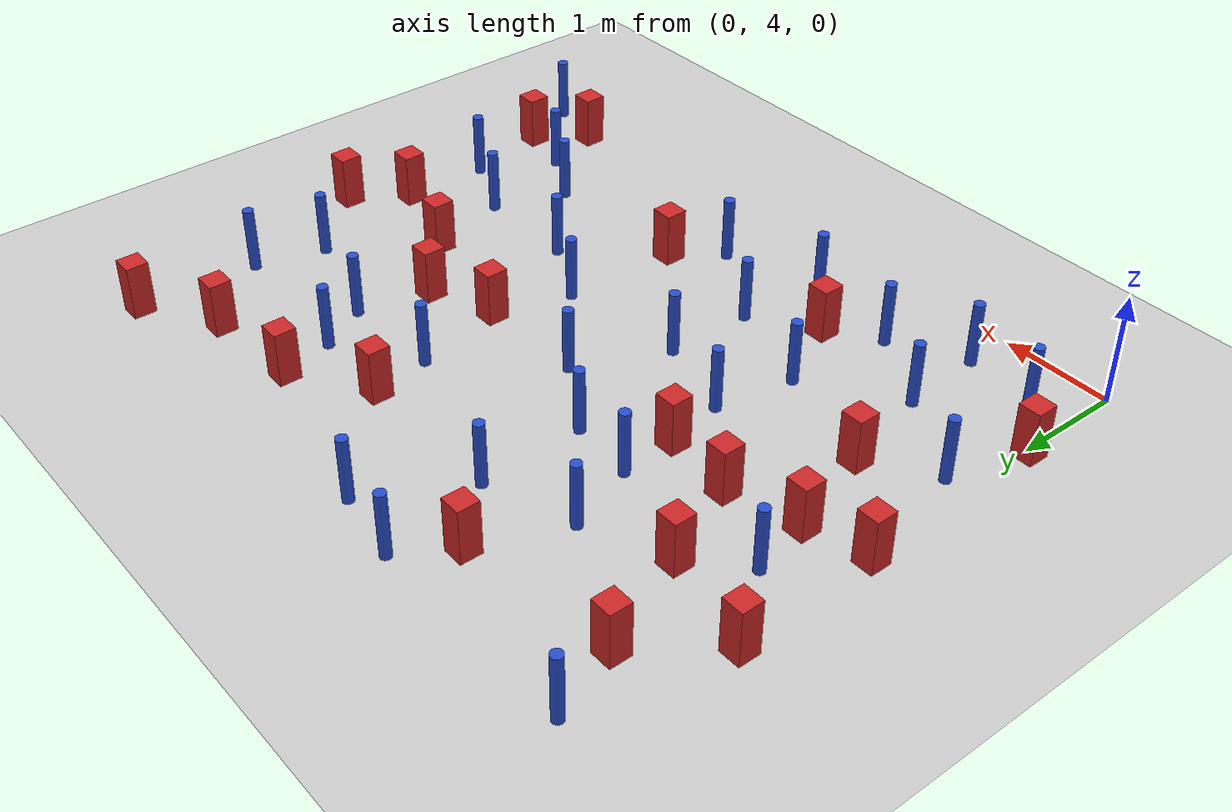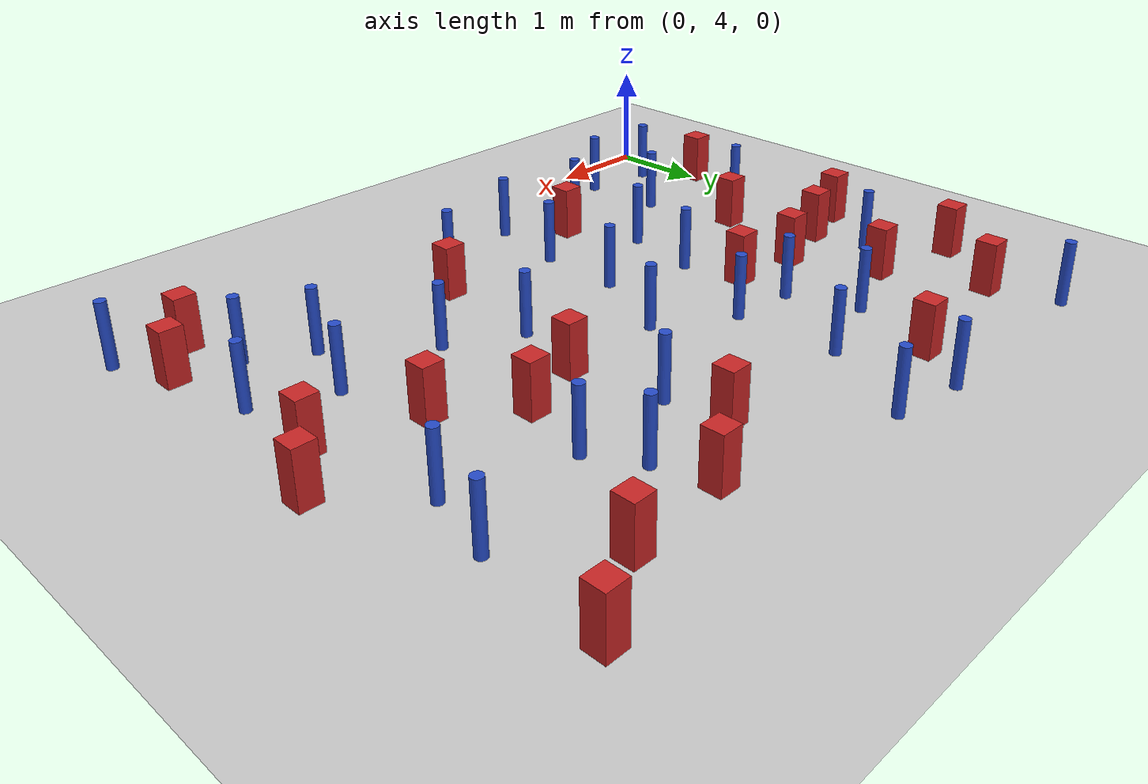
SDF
<sdf version="1.6">
 <world name="default">
  <model name="ground_plane">
   <static>1</static>
   <link name="link">
    <collision name="collision">
     <geometry><plane><normal>0 0 1</normal><size>100 100</size></plane></geometry>
     <surface><friction><ode><mu>100</mu><mu2>50</mu2></ode></friction></surface>
    </collision>
    <visual name="visual">
     <cast_shadows>0</cast_shadows>
     <geometry><plane><normal>0 0 1</normal><size>100 100</size></plane></geometry>
     <material>
      <ambient>1.0 1.0 1.0 1.0</ambient>
      <diffuse>0.8 0.8 0.8 1.0</diffuse>
      <specular>0.01 0.01 0.01 1.000000</specular>
     </material>
    </visual>
   </link>
  </model>
  <model name="pole_obstacle5">
   <static>true</static>
   <pose>3.83661777627 6.42022486806 -3.09024884793e-07 -7.19054271912e-07 -2.11315075134e-07 -1.93935509266e-07</pose>
   <link name="link">
    <pose>0 0 0.3 0 -0 0</pose>
    <inertial>
     <mass>1</mass>
     <inertia><ixx>0.145833</ixx><ixy>0</ixy><ixz>0</ixz><iyy>0.145833</iyy><iyz>0</iyz><izz>0.125</izz></inertia>
    </inertial>
    <collision name="collision">
     <geometry><cylinder><radius>0.05</radius><length>.6</length></cylinder></geometry>
    </collision>
    <visual name="visual">
     <geometry><cylinder><radius>0.05</radius><length>.6</length></cylinder></geometry>
     <material>
      <script><name>Gazebo/Blue</name><uri>file://media/materials/scripts/gazebo.material</uri></script>
     </material>
    </visual>
   </link>
  </model>
  <model name="pole_obstacle6">
   <static>true</static>
   <pose>2.53744129503 4.69287355189 -3.09024884793e-07 -7.19054271912e-07 -2.11315075134e-07 -1.93935509266e-07</pose>
   <link name="link">
    <pose>0 0 0.3 0 -0 0</pose>
    <inertial>
     <mass>1</mass>
     <inertia><ixx>0.145833</ixx><ixy>0</ixy><ixz>0</ixz><iyy>0.145833</iyy><iyz>0</iyz><izz>0.125</izz></inertia>
    </inertial>
    <collision name="collision">
     <geometry><cylinder><radius>0.05</radius><length>.6</length></cylinder></geometry>
    </collision>
    <visual name="visual">
     <geometry><cylinder><radius>0.05</radius><length>.6</length></cylinder></geometry>
     <material>
      <script><name>Gazebo/Blue</name><uri>file://media/materials/scripts/gazebo.material</uri></script>
     </material>
    </visual>
   </link>
  </model>
  <model name="pole_obstacle8">
   <static>true</static>
   <pose>1.89174017041 6.5032278963 -3.09024884793e-07 -7.19054271912e-07 -2.11315075134e-07 -1.93935509265e-07</pose>
   <link name="link">
    <pose>0 0 0.3 0 -0 0</pose>
    <inertial>
     <mass>1</mass>
     <inertia><ixx>0.145833</ixx><ixy>0</ixy><ixz>0</ixz><iyy>0.145833</iyy><iyz>0</iyz><izz>0.125</izz></inertia>
    </inertial>
    <collision name="collision">
     <geometry><cylinder><radius>0.05</radius><length>.6</length></cylinder></geometry>
    </collision>
    <visual name="visual">
     <geometry><cylinder><radius>0.05</radius><length>.6</length></cylinder></geometry>
     <material>
      <script><name>Gazebo/Blue</name><uri>file://media/materials/scripts/gazebo.material</uri></script>
     </material>
    </visual>
   </link>
  </model>
  <model name="square_post_obstacle21">
   <static>true</static>
   <pose>-0.0880051230226 6.8211781 -4.36207812815e-07 3.75137919937e-06 9.77721102514e-07 2.47381364184e-05</pose>
   <link name="link">
    <pose>0 0 0.25 0 -0 0</pose>
    <inertial>
     <mass>100</mass>
     <inertia>
      <ixx>0.166667</ixx>
      <ixy>0</ixy>
      <ixz>0</ixz>
      <iyy>0.166667</iyy>
      <iyz>0</iyz>
      <izz>0.166667</izz>
     </inertia>
    </inertial>
    <collision name="collision"><geometry><box><size>.2 .2 .5</size></box></geometry></collision>
    <visual name="visual">
     <geometry><box><size>.2 .2 .5</size></box></geometry>
     <material>
      <script><name>Gazebo/Red</name><uri>file://media/materials/scripts/gazebo.material</uri></script>
     </material>
    </visual>
   </link>
  </model>
  <model name="square_post_obstacle22">
   <static>true</static>
   <pose>0.770295329065 7.91233904299 -4.36207812815e-07 3.75137919937e-06 9.77721102514e-07 2.47381364184e-05</pose>
   <link name="link">
    <pose>0 0 0.25 0 -0 0</pose>
    <inertial>
     <mass>100</mass>
     <inertia>
      <ixx>0.166667</ixx>
      <ixy>0</ixy>
      <ixz>0</ixz>
      <iyy>0.166667</iyy>
      <iyz>0</iyz>
      <izz>0.166667</izz>
     </inertia>
    </inertial>
    <collision name="collision"><geometry><box><size>.2 .2 .5</size></box></geometry></collision>
    <visual name="visual">
     <geometry><box><size>.2 .2 .5</size></box></geometry>
     <material>
      <script><name>Gazebo/Red</name><uri>file://media/materials/scripts/gazebo.material</uri></script>
     </material>
    </visual>
   </link>
  </model>
  <model name="square_post_obstacle28">
   <static>true</static>
   <pose>2.08192857343 5.11743453235 -4.36207812815e-07 3.75137919937e-06 9.77721102514e-07 2.47381364184e-05</pose>
   <link name="link">
    <pose>0 0 0.25 0 -0 0</pose>
    <inertial>
     <mass>100</mass>
     <inertia>
      <ixx>0.166667</ixx>
      <ixy>0</ixy>
      <ixz>0</ixz>
      <iyy>0.166667</iyy>
      <iyz>0</iyz>
      <izz>0.166667</izz>
     </inertia>
    </inertial>
    <collision name="collision"><geometry><box><size>.2 .2 .5</size></box></geometry></collision>
    <visual name="visual">
     <geometry><box><size>.2 .2 .5</size></box></geometry>
     <material>
      <script><name>Gazebo/Red</name><uri>file://media/materials/scripts/gazebo.material</uri></script>
     </material>
    </visual>
   </link>
  </model>
  <model name="pole_obstacle23">
   <static>true</static>
   <pose>5.44430677845 6.07509815209 -3.09024884793e-07 -7.19054271911e-07 -2.1131507516e-07 -1.93935509277e-07</pose>
   <link name="link">
    <pose>0 0 0.3 0 -0 0</pose>
    <inertial>
     <mass>1</mass>
     <inertia><ixx>0.145833</ixx><ixy>0</ixy><ixz>0</ixz><iyy>0.145833</iyy><iyz>0</iyz><izz>0.125</izz></inertia>
    </inertial>
    <collision name="collision">
     <geometry><cylinder><radius>0.05</radius><length>.6</length></cylinder></geometry>
    </collision>
    <visual name="visual">
     <geometry><cylinder><radius>0.05</radius><length>.6</length></cylinder></geometry>
     <material>
      <script><name>Gazebo/Blue</name><uri>file://media/materials/scripts/gazebo.material</uri></script>
     </material>
    </visual>
   </link>
  </model>
  <model name="pole_obstacle25">
   <static>true</static>
   <pose>1.01417295319 4.4627892851 -3.09024884793e-07 -7.19054271912e-07 -2.11315075136e-07 -1.93935509265e-07</pose>
   <link name="link">
    <pose>0 0 0.3 0 -0 0</pose>
    <inertial>
     <mass>1</mass>
     <inertia><ixx>0.145833</ixx><ixy>0</ixy><ixz>0</ixz><iyy>0.145833</iyy><iyz>0</iyz><izz>0.125</izz></inertia>
    </inertial>
    <collision name="collision">
     <geometry><cylinder><radius>0.05</radius><length>.6</length></cylinder></geometry>
    </collision>
    <visual name="visual">
     <geometry><cylinder><radius>0.05</radius><length>.6</length></cylinder></geometry>
     <material>
      <script><name>Gazebo/Blue</name><uri>file://media/materials/scripts/gazebo.material</uri></script>
     </material>
    </visual>
   </link>
  </model>
  <model name="pole_obstacle29">
   <static>true</static>
   <pose>2.80087491197 9.34348993231 -3.09024884848e-07 -7.19054271902e-07 -2.11315075199e-07 -1.93935509286e-07</pose>
   <link name="link">
    <pose>0 0 0.3 0 -0 0</pose>
    <inertial>
     <mass>1</mass>
     <inertia><ixx>0.145833</ixx><ixy>0</ixy><ixz>0</ixz><iyy>0.145833</iyy><iyz>0</iyz><izz>0.125</izz></inertia>
    </inertial>
    <collision name="collision">
     <geometry><cylinder><radius>0.05</radius><length>.6</length></cylinder></geometry>
    </collision>
    <visual name="visual">
     <geometry><cylinder><radius>0.05</radius><length>.6</length></cylinder></geometry>
     <material>
      <script><name>Gazebo/Blue</name><uri>file://media/materials/scripts/gazebo.material</uri></script>
     </material>
    </visual>
   </link>
  </model>
  <model name="pole_obstacle50">
   <static>true</static>
   <pose>1.7583087315 5.78042792427 -3.09024884793e-07 -7.19054271912e-07 -2.11315075134e-07 -1.93935509265e-07</pose>
   <link name="link">
    <pose>0 0 0.3 0 -0 0</pose>
    <inertial>
     <mass>1</mass>
     <inertia><ixx>0.145833</ixx><ixy>0</ixy><ixz>0</ixz><iyy>0.145833</iyy><iyz>0</iyz><izz>0.125</izz></inertia>
    </inertial>
    <collision name="collision">
     <geometry><cylinder><radius>0.05</radius><length>.6</length></cylinder></geometry>
    </collision>
    <visual name="visual">
     <geometry><cylinder><radius>0.05</radius><length>.6</length></cylinder></geometry>
     <material>
      <script><name>Gazebo/Blue</name><uri>file://media/materials/scripts/gazebo.material</uri></script>
     </material>
    </visual>
   </link>
  </model>
  <model name="square_post_obstacle49">
   <static>true</static>
   <pose>4.63506410154 7.35016202231 -4.36207812815e-07 3.75137919937e-06 9.77721102514e-07 2.47381364184e-05</pose>
   <link name="link">
    <pose>0 0 0.25 0 -0 0</pose>
    <inertial>
     <mass>100</mass>
     <inertia>
      <ixx>0.166667</ixx>
      <ixy>0</ixy>
      <ixz>0</ixz>
      <iyy>0.166667</iyy>
      <iyz>0</iyz>
      <izz>0.166667</izz>
     </inertia>
    </inertial>
    <collision name="collision"><geometry><box><size>.2 .2 .5</size></box></geometry></collision>
    <visual name="visual">
     <geometry><box><size>.2 .2 .5</size></box></geometry>
     <material>
      <script><name>Gazebo/Red</name><uri>file://media/materials/scripts/gazebo.material</uri></script>
     </material>
    </visual>
   </link>
  </model>
  <model name="square_post_obstacle54">
   <static>true</static>
   <pose>1.10557648126 7.1422192572 -4.36207812815e-07 3.75137919937e-06 9.77721102514e-07 2.47381364184e-05</pose>
   <link name="link">
    <pose>0 0 0.25 0 -0 0</pose>
    <inertial>
     <mass>100</mass>
     <inertia>
      <ixx>0.166667</ixx>
      <ixy>0</ixy>
      <ixz>0</ixz>
      <iyy>0.166667</iyy>
      <iyz>0</iyz>
      <izz>0.166667</izz>
     </inertia>
    </inertial>
    <collision name="collision"><geometry><box><size>.2 .2 .5</size></box></geometry></collision>
    <visual name="visual">
     <geometry><box><size>.2 .2 .5</size></box></geometry>
     <material>
      <script><name>Gazebo/Red</name><uri>file://media/materials/scripts/gazebo.material</uri></script>
     </material>
    </visual>
   </link>
  </model>
  <model name="square_post_obstacle63">
   <static>true</static>
   <pose>3.77843962386 5.35256336695 -4.36207812815e-07 3.75137919937e-06 9.77721102514e-07 2.47381364184e-05</pose>
   <link name="link">
    <pose>0 0 0.25 0 -0 0</pose>
    <inertial>
     <mass>100</mass>
     <inertia>
      <ixx>0.166667</ixx>
      <ixy>0</ixy>
      <ixz>0</ixz>
      <iyy>0.166667</iyy>
      <iyz>0</iyz>
      <izz>0.166667</izz>
     </inertia>
    </inertial>
    <collision name="collision"><geometry><box><size>.2 .2 .5</size></box></geometry></collision>
    <visual name="visual">
     <geometry><box><size>.2 .2 .5</size></box></geometry>
     <material>
      <script><name>Gazebo/Red</name><uri>file://media/materials/scripts/gazebo.material</uri></script>
     </material>
    </visual>
   </link>
  </model>
  <model name="square_post_obstacle72">
   <static>true</static>
   <pose>5.21651931669 6.85543679907 -4.36207812815e-07 3.75137919937e-06 9.77721102514e-07 2.47381364184e-05</pose>
   <link name="link">
    <pose>0 0 0.25 0 -0 0</pose>
    <inertial>
     <mass>100</mass>
     <inertia>
      <ixx>0.166667</ixx>
      <ixy>0</ixy>
      <ixz>0</ixz>
      <iyy>0.166667</iyy>
      <iyz>0</iyz>
      <izz>0.166667</izz>
     </inertia>
    </inertial>
    <collision name="collision"><geometry><box><size>.2 .2 .5</size></box></geometry></collision>
    <visual name="visual">
     <geometry><box><size>.2 .2 .5</size></box></geometry>
     <material>
      <script><name>Gazebo/Red</name><uri>file://media/materials/scripts/gazebo.material</uri></script>
     </material>
    </visual>
   </link>
  </model>
  <model name="pole_obstacle81">
   <static>true</static>
   <pose>3.45064771461 4.94065020738 -3.09024884793e-07 -7.19054271912e-07 -2.11315075134e-07 -1.93935509266e-07</pose>
   <link name="link">
    <pose>0 0 0.3 0 -0 0</pose>
    <inertial>
     <mass>1</mass>
     <inertia><ixx>0.145833</ixx><ixy>0</ixy><ixz>0</ixz><iyy>0.145833</iyy><iyz>0</iyz><izz>0.125</izz></inertia>
    </inertial>
    <collision name="collision">
     <geometry><cylinder><radius>0.05</radius><length>.6</length></cylinder></geometry>
    </collision>
    <visual name="visual">
     <geometry><cylinder><radius>0.05</radius><length>.6</length></cylinder></geometry>
     <material>
      <script><name>Gazebo/Blue</name><uri>file://media/materials/scripts/gazebo.material</uri></script>
     </material>
    </visual>
   </link>
  </model>
  <model name="pole_obstacle84">
   <static>true</static>
   <pose>5.81066370214 7.70230278913 -3.09024884793e-07 -7.19054271911e-07 -2.1131507516e-07 -1.93935509277e-07</pose>
   <link name="link">
    <pose>0 0 0.3 0 -0 0</pose>
    <inertial>
     <mass>1</mass>
     <inertia><ixx>0.145833</ixx><ixy>0</ixy><ixz>0</ixz><iyy>0.145833</iyy><iyz>0</iyz><izz>0.125</izz></inertia>
    </inertial>
    <collision name="collision">
     <geometry><cylinder><radius>0.05</radius><length>.6</length></cylinder></geometry>
    </collision>
    <visual name="visual">
     <geometry><cylinder><radius>0.05</radius><length>.6</length></cylinder></geometry>
     <material>
      <script><name>Gazebo/Blue</name><uri>file://media/materials/scripts/gazebo.material</uri></script>
     </material>
    </visual>
   </link>
  </model>
  <model name="pole_obstacle92">
   <static>true</static>
   <pose>2.66948121092 6.26949181374 -3.09024884793e-07 -7.19054271912e-07 -2.11315075134e-07 -1.93935509266e-07</pose>
   <link name="link">
    <pose>0 0 0.3 0 -0 0</pose>
    <inertial>
     <mass>1</mass>
     <inertia><ixx>0.145833</ixx><ixy>0</ixy><ixz>0</ixz><iyy>0.145833</iyy><iyz>0</iyz><izz>0.125</izz></inertia>
    </inertial>
    <collision name="collision">
     <geometry><cylinder><radius>0.05</radius><length>.6</length></cylinder></geometry>
    </collision>
    <visual name="visual">
     <geometry><cylinder><radius>0.05</radius><length>.6</length></cylinder></geometry>
     <material>
      <script><name>Gazebo/Blue</name><uri>file://media/materials/scripts/gazebo.material</uri></script>
     </material>
    </visual>
   </link>
  </model>
  <model name="square_post_obstacle83">
   <static>true</static>
   <pose>4.0272043615 7.13334463335 -4.36207812815e-07 3.75137919937e-06 9.77721102514e-07 2.47381364184e-05</pose>
   <link name="link">
    <pose>0 0 0.25 0 -0 0</pose>
    <inertial>
     <mass>100</mass>
     <inertia>
      <ixx>0.166667</ixx>
      <ixy>0</ixy>
      <ixz>0</ixz>
      <iyy>0.166667</iyy>
      <iyz>0</iyz>
      <izz>0.166667</izz>
     </inertia>
    </inertial>
    <collision name="collision"><geometry><box><size>.2 .2 .5</size></box></geometry></collision>
    <visual name="visual">
     <geometry><box><size>.2 .2 .5</size></box></geometry>
     <material>
      <script><name>Gazebo/Red</name><uri>file://media/materials/scripts/gazebo.material</uri></script>
     </material>
    </visual>
   </link>
  </model>
  <model name="pole_obstacle96">
   <static>true</static>
   <pose>4.54986147679 8.44352539216 -3.09024884793e-07 -7.19054271912e-07 -2.1131507513e-07 -1.93935509261e-07</pose>
   <link name="link">
    <pose>0 0 0.3 0 -0 0</pose>
    <inertial>
     <mass>1</mass>
     <inertia><ixx>0.145833</ixx><ixy>0</ixy><ixz>0</ixz><iyy>0.145833</iyy><iyz>0</iyz><izz>0.125</izz></inertia>
    </inertial>
    <collision name="collision">
     <geometry><cylinder><radius>0.05</radius><length>.6</length></cylinder></geometry>
    </collision>
    <visual name="visual">
     <geometry><cylinder><radius>0.05</radius><length>.6</length></cylinder></geometry>
     <material>
      <script><name>Gazebo/Blue</name><uri>file://media/materials/scripts/gazebo.material</uri></script>
     </material>
    </visual>
   </link>
  </model>
  <model name="pole_obstacle101">
   <static>true</static>
   <pose>0.169222520505 5.74013484759 -3.09024884793e-07 -7.19054271912e-07 -2.11315075134e-07 -1.93935509266e-07</pose>
   <link name="link">
    <pose>0 0 0.3 0 -0 0</pose>
    <inertial>
     <mass>1</mass>
     <inertia><ixx>0.145833</ixx><ixy>0</ixy><ixz>0</ixz><iyy>0.145833</iyy><iyz>0</iyz><izz>0.125</izz></inertia>
    </inertial>
    <collision name="collision">
     <geometry><cylinder><radius>0.05</radius><length>.6</length></cylinder></geometry>
    </collision>
    <visual name="visual">
     <geometry><cylinder><radius>0.05</radius><length>.6</length></cylinder></geometry>
     <material>
      <script><name>Gazebo/Blue</name><uri>file://media/materials/scripts/gazebo.material</uri></script>
     </material>
    </visual>
   </link>
  </model>
  <model name="pole_obstacle103">
   <static>true</static>
   <pose>2.12944455801 9.45097302541 -3.09024884848e-07 -7.19054271902e-07 -2.11315075199e-07 -1.93935509286e-07</pose>
   <link name="link">
    <pose>0 0 0.3 0 -0 0</pose>
    <inertial>
     <mass>1</mass>
     <inertia><ixx>0.145833</ixx><ixy>0</ixy><ixz>0</ixz><iyy>0.145833</iyy><iyz>0</iyz><izz>0.125</izz></inertia>
    </inertial>
    <collision name="collision">
     <geometry><cylinder><radius>0.05</radius><length>.6</length></cylinder></geometry>
    </collision>
    <visual name="visual">
     <geometry><cylinder><radius>0.05</radius><length>.6</length></cylinder></geometry>
     <material>
      <script><name>Gazebo/Blue</name><uri>file://media/materials/scripts/gazebo.material</uri></script>
     </material>
    </visual>
   </link>
  </model>
  <model name="pole_obstacle110">
   <static>true</static>
   <pose>0.185506783056 9.41429202782 -3.09024884793e-07 -7.19054271911e-07 -2.11315075161e-07 -1.9393550928e-07</pose>
   <link name="link">
    <pose>0 0 0.3 0 -0 0</pose>
    <inertial>
     <mass>1</mass>
     <inertia><ixx>0.145833</ixx><ixy>0</ixy><ixz>0</ixz><iyy>0.145833</iyy><iyz>0</iyz><izz>0.125</izz></inertia>
    </inertial>
    <collision name="collision">
     <geometry><cylinder><radius>0.05</radius><length>.6</length></cylinder></geometry>
    </collision>
    <visual name="visual">
     <geometry><cylinder><radius>0.05</radius><length>.6</length></cylinder></geometry>
     <material>
      <script><name>Gazebo/Blue</name><uri>file://media/materials/scripts/gazebo.material</uri></script>
     </material>
    </visual>
   </link>
  </model>
  <model name="pole_obstacle111">
   <static>true</static>
   <pose>4.79246933379 8.00220423275 -3.09024884793e-07 -7.19054271912e-07 -2.11315075147e-07 -1.9393550927e-07</pose>
   <link name="link">
    <pose>0 0 0.3 0 -0 0</pose>
    <inertial>
     <mass>1</mass>
     <inertia><ixx>0.145833</ixx><ixy>0</ixy><ixz>0</ixz><iyy>0.145833</iyy><iyz>0</iyz><izz>0.125</izz></inertia>
    </inertial>
    <collision name="collision">
     <geometry><cylinder><radius>0.05</radius><length>.6</length></cylinder></geometry>
    </collision>
    <visual name="visual">
     <geometry><cylinder><radius>0.05</radius><length>.6</length></cylinder></geometry>
     <material>
      <script><name>Gazebo/Blue</name><uri>file://media/materials/scripts/gazebo.material</uri></script>
     </material>
    </visual>
   </link>
  </model>
  <model name="square_post_obstacle99">
   <static>true</static>
   <pose>6.01610082848 9.42846718247 -4.36207812815e-07 3.75137919937e-06 9.77721102514e-07 2.47381364184e-05</pose>
   <link name="link">
    <pose>0 0 0.25 0 -0 0</pose>
    <inertial>
     <mass>100</mass>
     <inertia>
      <ixx>0.166667</ixx>
      <ixy>0</ixy>
      <ixz>0</ixz>
      <iyy>0.166667</iyy>
      <iyz>0</iyz>
      <izz>0.166667</izz>
     </inertia>
    </inertial>
    <collision name="collision"><geometry><box><size>.2 .2 .5</size></box></geometry></collision>
    <visual name="visual">
     <geometry><box><size>.2 .2 .5</size></box></geometry>
     <material>
      <script><name>Gazebo/Red</name><uri>file://media/materials/scripts/gazebo.material</uri></script>
     </material>
    </visual>
   </link>
  </model>
  <model name="pole_obstacle117">
   <static>true</static>
   <pose>2.3574890763 7.50916860216 -3.09024884793e-07 -7.19054271912e-07 -2.11315075134e-07 -1.93935509266e-07</pose>
   <link name="link">
    <pose>0 0 0.3 0 -0 0</pose>
    <inertial>
     <mass>1</mass>
     <inertia><ixx>0.145833</ixx><ixy>0</ixy><ixz>0</ixz><iyy>0.145833</iyy><iyz>0</iyz><izz>0.125</izz></inertia>
    </inertial>
    <collision name="collision">
     <geometry><cylinder><radius>0.05</radius><length>.6</length></cylinder></geometry>
    </collision>
    <visual name="visual">
     <geometry><cylinder><radius>0.05</radius><length>.6</length></cylinder></geometry>
     <material>
      <script><name>Gazebo/Blue</name><uri>file://media/materials/scripts/gazebo.material</uri></script>
     </material>
    </visual>
   </link>
  </model>
  <model name="square_post_obstacle106">
   <static>true</static>
   <pose>0.734303831905 6.12239631268 -4.36207812815e-07 3.75137919937e-06 9.77721102514e-07 2.47381364184e-05</pose>
   <link name="link">
    <pose>0 0 0.25 0 -0 0</pose>
    <inertial>
     <mass>100</mass>
     <inertia>
      <ixx>0.166667</ixx>
      <ixy>0</ixy>
      <ixz>0</ixz>
      <iyy>0.166667</iyy>
      <iyz>0</iyz>
      <izz>0.166667</izz>
     </inertia>
    </inertial>
    <collision name="collision"><geometry><box><size>.2 .2 .5</size></box></geometry></collision>
    <visual name="visual">
     <geometry><box><size>.2 .2 .5</size></box></geometry>
     <material>
      <script><name>Gazebo/Red</name><uri>file://media/materials/scripts/gazebo.material</uri></script>
     </material>
    </visual>
   </link>
  </model>
  <model name="square_post_obstacle107">
   <static>true</static>
   <pose>6.24881482589 4.99114796895 -4.36207812815e-07 3.75137919937e-06 9.77721102514e-07 2.47381364184e-05</pose>
   <link name="link">
    <pose>0 0 0.25 0 -0 0</pose>
    <inertial>
     <mass>100</mass>
     <inertia>
      <ixx>0.166667</ixx>
      <ixy>0</ixy>
      <ixz>0</ixz>
      <iyy>0.166667</iyy>
      <iyz>0</iyz>
      <izz>0.166667</izz>
     </inertia>
    </inertial>
    <collision name="collision"><geometry><box><size>.2 .2 .5</size></box></geometry></collision>
    <visual name="visual">
     <geometry><box><size>.2 .2 .5</size></box></geometry>
     <material>
      <script><name>Gazebo/Red</name><uri>file://media/materials/scripts/gazebo.material</uri></script>
     </material>
    </visual>
   </link>
  </model>
  <model name="pole_obstacle122">
   <static>true</static>
   <pose>0.339772913459 4.56035849297 -3.09024884793e-07 -7.19054271912e-07 -2.1131507513e-07 -1.93935509262e-07</pose>
   <link name="link">
    <pose>0 0 0.3 0 -0 0</pose>
    <inertial>
     <mass>1</mass>
     <inertia><ixx>0.145833</ixx><ixy>0</ixy><ixz>0</ixz><iyy>0.145833</iyy><iyz>0</iyz><izz>0.125</izz></inertia>
    </inertial>
    <collision name="collision">
     <geometry><cylinder><radius>0.05</radius><length>.6</length></cylinder></geometry>
    </collision>
    <visual name="visual">
     <geometry><cylinder><radius>0.05</radius><length>.6</length></cylinder></geometry>
     <material>
      <script><name>Gazebo/Blue</name><uri>file://media/materials/scripts/gazebo.material</uri></script>
     </material>
    </visual>
   </link>
  </model>
  <model name="pole_obstacle132">
   <static>true</static>
   <pose>2.65679225266 5.46957806932 -3.09024884793e-07 -7.19054271912e-07 -2.11315075134e-07 -1.93935509266e-07</pose>
   <link name="link">
    <pose>0 0 0.3 0 -0 0</pose>
    <inertial>
     <mass>1</mass>
     <inertia><ixx>0.145833</ixx><ixy>0</ixy><ixz>0</ixz><iyy>0.145833</iyy><iyz>0</iyz><izz>0.125</izz></inertia>
    </inertial>
    <collision name="collision">
     <geometry><cylinder><radius>0.05</radius><length>.6</length></cylinder></geometry>
    </collision>
    <visual name="visual">
     <geometry><cylinder><radius>0.05</radius><length>.6</length></cylinder></geometry>
     <material>
      <script><name>Gazebo/Blue</name><uri>file://media/materials/scripts/gazebo.material</uri></script>
     </material>
    </visual>
   </link>
  </model>
  <model name="square_post_obstacle116">
   <static>true</static>
   <pose>-0.125059032981 8.12474749925 -4.36207812815e-07 3.75137919937e-06 9.77721102514e-07 2.47381364184e-05</pose>
   <link name="link">
    <pose>0 0 0.25 0 -0 0</pose>
    <inertial>
     <mass>100</mass>
     <inertia>
      <ixx>0.166667</ixx>
      <ixy>0</ixy>
      <ixz>0</ixz>
      <iyy>0.166667</iyy>
      <iyz>0</iyz>
      <izz>0.166667</izz>
     </inertia>
    </inertial>
    <collision name="collision"><geometry><box><size>.2 .2 .5</size></box></geometry></collision>
    <visual name="visual">
     <geometry><box><size>.2 .2 .5</size></box></geometry>
     <material>
      <script><name>Gazebo/Red</name><uri>file://media/materials/scripts/gazebo.material</uri></script>
     </material>
    </visual>
   </link>
  </model>
  <model name="pole_obstacle136">
   <static>true</static>
   <pose>1.51941862696 8.20251110183 -3.09024884793e-07 -7.19054271912e-07 -2.1131507515e-07 -1.93935509273e-07</pose>
   <link name="link">
    <pose>0 0 0.3 0 -0 0</pose>
    <inertial>
     <mass>1</mass>
     <inertia><ixx>0.145833</ixx><ixy>0</ixy><ixz>0</ixz><iyy>0.145833</iyy><iyz>0</iyz><izz>0.125</izz></inertia>
    </inertial>
    <collision name="collision">
     <geometry><cylinder><radius>0.05</radius><length>.6</length></cylinder></geometry>
    </collision>
    <visual name="visual">
     <geometry><cylinder><radius>0.05</radius><length>.6</length></cylinder></geometry>
     <material>
      <script><name>Gazebo/Blue</name><uri>file://media/materials/scripts/gazebo.material</uri></script>
     </material>
    </visual>
   </link>
  </model>
  <model name="pole_obstacle137">
   <static>true</static>
   <pose>6.08957914513 5.77968271619 -3.09024884793e-07 -7.19054271911e-07 -2.1131507516e-07 -1.93935509277e-07</pose>
   <link name="link">
    <pose>0 0 0.3 0 -0 0</pose>
    <inertial>
     <mass>1</mass>
     <inertia><ixx>0.145833</ixx><ixy>0</ixy><ixz>0</ixz><iyy>0.145833</iyy><iyz>0</iyz><izz>0.125</izz></inertia>
    </inertial>
    <collision name="collision">
     <geometry><cylinder><radius>0.05</radius><length>.6</length></cylinder></geometry>
    </collision>
    <visual name="visual">
     <geometry><cylinder><radius>0.05</radius><length>.6</length></cylinder></geometry>
     <material>
      <script><name>Gazebo/Blue</name><uri>file://media/materials/scripts/gazebo.material</uri></script>
     </material>
    </visual>
   </link>
  </model>
  <model name="pole_obstacle138">
   <static>true</static>
   <pose>3.84352892572 7.95341492797 -3.09024884793e-07 -7.19054271912e-07 -2.11315075135e-07 -1.93935509266e-07</pose>
   <link name="link">
    <pose>0 0 0.3 0 -0 0</pose>
    <inertial>
     <mass>1</mass>
     <inertia><ixx>0.145833</ixx><ixy>0</ixy><ixz>0</ixz><iyy>0.145833</iyy><iyz>0</iyz><izz>0.125</izz></inertia>
    </inertial>
    <collision name="collision">
     <geometry><cylinder><radius>0.05</radius><length>.6</length></cylinder></geometry>
    </collision>
    <visual name="visual">
     <geometry><cylinder><radius>0.05</radius><length>.6</length></cylinder></geometry>
     <material>
      <script><name>Gazebo/Blue</name><uri>file://media/materials/scripts/gazebo.material</uri></script>
     </material>
    </visual>
   </link>
  </model>
  <model name="square_post_obstacle125">
   <static>true</static>
   <pose>0.455404295277 6.96728558442 -4.36207812815e-07 3.75137919937e-06 9.77721102514e-07 2.47381364184e-05</pose>
   <link name="link">
    <pose>0 0 0.25 0 -0 0</pose>
    <inertial>
     <mass>100</mass>
     <inertia>
      <ixx>0.166667</ixx>
      <ixy>0</ixy>
      <ixz>0</ixz>
      <iyy>0.166667</iyy>
      <iyz>0</iyz>
      <izz>0.166667</izz>
     </inertia>
    </inertial>
    <collision name="collision"><geometry><box><size>.2 .2 .5</size></box></geometry></collision>
    <visual name="visual">
     <geometry><box><size>.2 .2 .5</size></box></geometry>
     <material>
      <script><name>Gazebo/Red</name><uri>file://media/materials/scripts/gazebo.material</uri></script>
     </material>
    </visual>
   </link>
  </model>
  <model name="square_post_obstacle132">
   <static>true</static>
   <pose>4.41002703682 8.94087150565 -4.36207812815e-07 3.75137919937e-06 9.77721102514e-07 2.47381364184e-05</pose>
   <link name="link">
    <pose>0 0 0.25 0 -0 0</pose>
    <inertial>
     <mass>100</mass>
     <inertia>
      <ixx>0.166667</ixx>
      <ixy>0</ixy>
      <ixz>0</ixz>
      <iyy>0.166667</iyy>
      <iyz>0</iyz>
      <izz>0.166667</izz>
     </inertia>
    </inertial>
    <collision name="collision"><geometry><box><size>.2 .2 .5</size></box></geometry></collision>
    <visual name="visual">
     <geometry><box><size>.2 .2 .5</size></box></geometry>
     <material>
      <script><name>Gazebo/Red</name><uri>file://media/materials/scripts/gazebo.material</uri></script>
     </material>
    </visual>
   </link>
  </model>
  <model name="square_post_obstacle134">
   <static>true</static>
   <pose>3.73537916537 8.49232538215 -4.36207812815e-07 3.75137919937e-06 9.77721102514e-07 2.47381364184e-05</pose>
   <link name="link">
    <pose>0 0 0.25 0 -0 0</pose>
    <inertial>
     <mass>100</mass>
     <inertia>
      <ixx>0.166667</ixx>
      <ixy>0</ixy>
      <ixz>0</ixz>
      <iyy>0.166667</iyy>
      <iyz>0</iyz>
      <izz>0.166667</izz>
     </inertia>
    </inertial>
    <collision name="collision"><geometry><box><size>.2 .2 .5</size></box></geometry></collision>
    <visual name="visual">
     <geometry><box><size>.2 .2 .5</size></box></geometry>
     <material>
      <script><name>Gazebo/Red</name><uri>file://media/materials/scripts/gazebo.material</uri></script>
     </material>
    </visual>
   </link>
  </model>
  <model name="square_post_obstacle138">
   <static>true</static>
   <pose>5.33867948354 9.01360144357 -4.36207812815e-07 3.75137919937e-06 9.77721102514e-07 2.47381364184e-05</pose>
   <link name="link">
    <pose>0 0 0.25 0 -0 0</pose>
    <inertial>
     <mass>100</mass>
     <inertia>
      <ixx>0.166667</ixx>
      <ixy>0</ixy>
      <ixz>0</ixz>
      <iyy>0.166667</iyy>
      <iyz>0</iyz>
      <izz>0.166667</izz>
     </inertia>
    </inertial>
    <collision name="collision"><geometry><box><size>.2 .2 .5</size></box></geometry></collision>
    <visual name="visual">
     <geometry><box><size>.2 .2 .5</size></box></geometry>
     <material>
      <script><name>Gazebo/Red</name><uri>file://media/materials/scripts/gazebo.material</uri></script>
     </material>
    </visual>
   </link>
  </model>
  <model name="square_post_obstacle144">
   <static>true</static>
   <pose>6.42177120947 7.06343047882 -4.36207812815e-07 3.75137919937e-06 9.77721102514e-07 2.47381364184e-05</pose>
   <link name="link">
    <pose>0 0 0.25 0 -0 0</pose>
    <inertial>
     <mass>100</mass>
     <inertia>
      <ixx>0.166667</ixx>
      <ixy>0</ixy>
      <ixz>0</ixz>
      <iyy>0.166667</iyy>
      <iyz>0</iyz>
      <izz>0.166667</izz>
     </inertia>
    </inertial>
    <collision name="collision"><geometry><box><size>.2 .2 .5</size></box></geometry></collision>
    <visual name="visual">
     <geometry><box><size>.2 .2 .5</size></box></geometry>
     <material>
      <script><name>Gazebo/Red</name><uri>file://media/materials/scripts/gazebo.material</uri></script>
     </material>
    </visual>
   </link>
  </model>
  <model name="square_post_obstacle153">
   <static>true</static>
   <pose>1.76625038072 7.06085350983 -4.36207812815e-07 3.75137919937e-06 9.77721102514e-07 2.47381364184e-05</pose>
   <link name="link">
    <pose>0 0 0.25 0 -0 0</pose>
    <inertial>
     <mass>100</mass>
     <inertia>
      <ixx>0.166667</ixx>
      <ixy>0</ixy>
      <ixz>0</ixz>
      <iyy>0.166667</iyy>
      <iyz>0</iyz>
      <izz>0.166667</izz>
     </inertia>
    </inertial>
    <collision name="collision"><geometry><box><size>.2 .2 .5</size></box></geometry></collision>
    <visual name="visual">
     <geometry><box><size>.2 .2 .5</size></box></geometry>
     <material>
      <script><name>Gazebo/Red</name><uri>file://media/materials/scripts/gazebo.material</uri></script>
     </material>
    </visual>
   </link>
  </model>
  <model name="pole_obstacle162">
   <static>true</static>
   <pose>2.32070880899 8.47478001123 -3.09024884848e-07 -7.19054271902e-07 -2.11315075199e-07 -1.93935509286e-07</pose>
   <link name="link">
    <pose>0 0 0.3 0 -0 0</pose>
    <inertial>
     <mass>1</mass>
     <inertia><ixx>0.145833</ixx><ixy>0</ixy><ixz>0</ixz><iyy>0.145833</iyy><iyz>0</iyz><izz>0.125</izz></inertia>
    </inertial>
    <collision name="collision">
     <geometry><cylinder><radius>0.05</radius><length>.6</length></cylinder></geometry>
    </collision>
    <visual name="visual">
     <geometry><cylinder><radius>0.05</radius><length>.6</length></cylinder></geometry>
     <material>
      <script><name>Gazebo/Blue</name><uri>file://media/materials/scripts/gazebo.material</uri></script>
     </material>
    </visual>
   </link>
  </model>
  <model name="pole_obstacle163">
   <static>true</static>
   <pose>0.348115118543 7.49162655543 -3.09024884793e-07 -7.19054271912e-07 -2.1131507513e-07 -1.93935509262e-07</pose>
   <link name="link">
    <pose>0 0 0.3 0 -0 0</pose>
    <inertial>
     <mass>1</mass>
     <inertia><ixx>0.145833</ixx><ixy>0</ixy><ixz>0</ixz><iyy>0.145833</iyy><iyz>0</iyz><izz>0.125</izz></inertia>
    </inertial>
    <collision name="collision">
     <geometry><cylinder><radius>0.05</radius><length>.6</length></cylinder></geometry>
    </collision>
    <visual name="visual">
     <geometry><cylinder><radius>0.05</radius><length>.6</length></cylinder></geometry>
     <material>
      <script><name>Gazebo/Blue</name><uri>file://media/materials/scripts/gazebo.material</uri></script>
     </material>
    </visual>
   </link>
  </model>
  <model name="square_post_obstacle156">
   <static>true</static>
   <pose>6.08495761401 6.58234699076 -4.36207812815e-07 3.75137919937e-06 9.77721102514e-07 2.47381364184e-05</pose>
   <link name="link">
    <pose>0 0 0.25 0 -0 0</pose>
    <inertial>
     <mass>100</mass>
     <inertia>
      <ixx>0.166667</ixx>
      <ixy>0</ixy>
      <ixz>0</ixz>
      <iyy>0.166667</iyy>
      <iyz>0</iyz>
      <izz>0.166667</izz>
     </inertia>
    </inertial>
    <collision name="collision"><geometry><box><size>.2 .2 .5</size></box></geometry></collision>
    <visual name="visual">
     <geometry><box><size>.2 .2 .5</size></box></geometry>
     <material>
      <script><name>Gazebo/Red</name><uri>file://media/materials/scripts/gazebo.material</uri></script>
     </material>
    </visual>
   </link>
  </model>
  <model name="pole_obstacle170">
   <static>true</static>
   <pose>5.97631988957 8.33172040229 -3.09024884793e-07 -7.19054271912e-07 -2.1131507513e-07 -1.93935509261e-07</pose>
   <link name="link">
    <pose>0 0 0.3 0 -0 0</pose>
    <inertial>
     <mass>1</mass>
     <inertia><ixx>0.145833</ixx><ixy>0</ixy><ixz>0</ixz><iyy>0.145833</iyy><iyz>0</iyz><izz>0.125</izz></inertia>
    </inertial>
    <collision name="collision">
     <geometry><cylinder><radius>0.05</radius><length>.6</length></cylinder></geometry>
    </collision>
    <visual name="visual">
     <geometry><cylinder><radius>0.05</radius><length>.6</length></cylinder></geometry>
     <material>
      <script><name>Gazebo/Blue</name><uri>file://media/materials/scripts/gazebo.material</uri></script>
     </material>
    </visual>
   </link>
  </model>
  <model name="pole_obstacle177">
   <static>true</static>
   <pose>4.46756880076 6.08256196538 -3.09024884793e-07 -7.19054271911e-07 -2.1131507516e-07 -1.93935509277e-07</pose>
   <link name="link">
    <pose>0 0 0.3 0 -0 0</pose>
    <inertial>
     <mass>1</mass>
     <inertia><ixx>0.145833</ixx><ixy>0</ixy><ixz>0</ixz><iyy>0.145833</iyy><iyz>0</iyz><izz>0.125</izz></inertia>
    </inertial>
    <collision name="collision">
     <geometry><cylinder><radius>0.05</radius><length>.6</length></cylinder></geometry>
    </collision>
    <visual name="visual">
     <geometry><cylinder><radius>0.05</radius><length>.6</length></cylinder></geometry>
     <material>
      <script><name>Gazebo/Blue</name><uri>file://media/materials/scripts/gazebo.material</uri></script>
     </material>
    </visual>
   </link>
  </model>
  <model name="square_post_obstacle166">
   <static>true</static>
   <pose>-0.0399049726343 5.02581718566 -4.36207812815e-07 3.75137919937e-06 9.77721102514e-07 2.47381364184e-05</pose>
   <link name="link">
    <pose>0 0 0.25 0 -0 0</pose>
    <inertial>
     <mass>100</mass>
     <inertia>
      <ixx>0.166667</ixx>
      <ixy>0</ixy>
      <ixz>0</ixz>
      <iyy>0.166667</iyy>
      <iyz>0</iyz>
      <izz>0.166667</izz>
     </inertia>
    </inertial>
    <collision name="collision"><geometry><box><size>.2 .2 .5</size></box></geometry></collision>
    <visual name="visual">
     <geometry><box><size>.2 .2 .5</size></box></geometry>
     <material>
      <script><name>Gazebo/Red</name><uri>file://media/materials/scripts/gazebo.material</uri></script>
     </material>
    </visual>
   </link>
  </model>
  <model name="pole_obstacle178">
   <static>true</static>
   <pose>3.03128320314 7.08715648567 -3.09024884793e-07 -7.19054271912e-07 -2.11315075134e-07 -1.93935509266e-07</pose>
   <link name="link">
    <pose>0 0 0.3 0 -0 0</pose>
    <inertial>
     <mass>1</mass>
     <inertia><ixx>0.145833</ixx><ixy>0</ixy><ixz>0</ixz><iyy>0.145833</iyy><iyz>0</iyz><izz>0.125</izz></inertia>
    </inertial>
    <collision name="collision">
     <geometry><cylinder><radius>0.05</radius><length>.6</length></cylinder></geometry>
    </collision>
    <visual name="visual">
     <geometry><cylinder><radius>0.05</radius><length>.6</length></cylinder></geometry>
     <material>
      <script><name>Gazebo/Blue</name><uri>file://media/materials/scripts/gazebo.material</uri></script>
     </material>
    </visual>
   </link>
  </model>
  <model name="square_post_obstacle173">
   <static>true</static>
   <pose>0.398816903794 8.7965789257 -4.36207812815e-07 3.75137919937e-06 9.77721102514e-07 2.47381364184e-05</pose>
   <link name="link">
    <pose>0 0 0.25 0 -0 0</pose>
    <inertial>
     <mass>100</mass>
     <inertia>
      <ixx>0.166667</ixx>
      <ixy>0</ixy>
      <ixz>0</ixz>
      <iyy>0.166667</iyy>
      <iyz>0</iyz>
      <izz>0.166667</izz>
     </inertia>
    </inertial>
    <collision name="collision"><geometry><box><size>.2 .2 .5</size></box></geometry></collision>
    <visual name="visual">
     <geometry><box><size>.2 .2 .5</size></box></geometry>
     <material>
      <script><name>Gazebo/Red</name><uri>file://media/materials/scripts/gazebo.material</uri></script>
     </material>
    </visual>
   </link>
  </model>
  <model name="square_post_obstacle182">
   <static>true</static>
   <pose>5.90678770011 4.55961697692 -4.36207812815e-07 3.75137919937e-06 9.77721102514e-07 2.47381364184e-05</pose>
   <link name="link">
    <pose>0 0 0.25 0 -0 0</pose>
    <inertial>
     <mass>100</mass>
     <inertia>
      <ixx>0.166667</ixx>
      <ixy>0</ixy>
      <ixz>0</ixz>
      <iyy>0.166667</iyy>
      <iyz>0</iyz>
      <izz>0.166667</izz>
     </inertia>
    </inertial>
    <collision name="collision"><geometry><box><size>.2 .2 .5</size></box></geometry></collision>
    <visual name="visual">
     <geometry><box><size>.2 .2 .5</size></box></geometry>
     <material>
      <script><name>Gazebo/Red</name><uri>file://media/materials/scripts/gazebo.material</uri></script>
     </material>
    </visual>
   </link>
  </model>
  <model name="square_post_obstacle195">
   <static>true</static>
   <pose>1.81545232077 8.99572102862 -4.36207812815e-07 3.75137919937e-06 9.77721102514e-07 2.47381364184e-05</pose>
   <link name="link">
    <pose>0 0 0.25 0 -0 0</pose>
    <inertial>
     <mass>100</mass>
     <inertia>
      <ixx>0.166667</ixx>
      <ixy>0</ixy>
      <ixz>0</ixz>
      <iyy>0.166667</iyy>
      <iyz>0</iyz>
      <izz>0.166667</izz>
     </inertia>
    </inertial>
    <collision name="collision"><geometry><box><size>.2 .2 .5</size></box></geometry></collision>
    <visual name="visual">
     <geometry><box><size>.2 .2 .5</size></box></geometry>
     <material>
      <script><name>Gazebo/Red</name><uri>file://media/materials/scripts/gazebo.material</uri></script>
     </material>
    </visual>
   </link>
  </model>
  <model name="pole_obstacle206">
   <static>true</static>
   <pose>5.21436188176 5.41315970173 -3.09024884793e-07 -7.19054271911e-07 -2.1131507516e-07 -1.93935509277e-07</pose>
   <link name="link">
    <pose>0 0 0.3 0 -0 0</pose>
    <inertial>
     <mass>1</mass>
     <inertia><ixx>0.145833</ixx><ixy>0</ixy><ixz>0</ixz><iyy>0.145833</iyy><iyz>0</iyz><izz>0.125</izz></inertia>
    </inertial>
    <collision name="collision">
     <geometry><cylinder><radius>0.05</radius><length>.6</length></cylinder></geometry>
    </collision>
    <visual name="visual">
     <geometry><cylinder><radius>0.05</radius><length>.6</length></cylinder></geometry>
     <material>
      <script><name>Gazebo/Blue</name><uri>file://media/materials/scripts/gazebo.material</uri></script>
     </material>
    </visual>
   </link>
  </model>
  <model name="pole_obstacle208">
   <static>true</static>
   <pose>1.74719638762 7.56512237477 -3.09024884793e-07 -7.19054271912e-07 -2.11315075134e-07 -1.93935509265e-07</pose>
   <link name="link">
    <pose>0 0 0.3 0 -0 0</pose>
    <inertial>
     <mass>1</mass>
     <inertia><ixx>0.145833</ixx><ixy>0</ixy><ixz>0</ixz><iyy>0.145833</iyy><iyz>0</iyz><izz>0.125</izz></inertia>
    </inertial>
    <collision name="collision">
     <geometry><cylinder><radius>0.05</radius><length>.6</length></cylinder></geometry>
    </collision>
    <visual name="visual">
     <geometry><cylinder><radius>0.05</radius><length>.6</length></cylinder></geometry>
     <material>
      <script><name>Gazebo/Blue</name><uri>file://media/materials/scripts/gazebo.material</uri></script>
     </material>
    </visual>
   </link>
  </model>
  <model name="pole_obstacle224">
   <static>true</static>
   <pose>1.65669000976 4.80330002078 -3.09024884793e-07 -7.19054271912e-07 -2.11315075132e-07 -1.93935509264e-07</pose>
   <link name="link">
    <pose>0 0 0.3 0 -0 0</pose>
    <inertial>
     <mass>1</mass>
     <inertia><ixx>0.145833</ixx><ixy>0</ixy><ixz>0</ixz><iyy>0.145833</iyy><iyz>0</iyz><izz>0.125</izz></inertia>
    </inertial>
    <collision name="collision">
     <geometry><cylinder><radius>0.05</radius><length>.6</length></cylinder></geometry>
    </collision>
    <visual name="visual">
     <geometry><cylinder><radius>0.05</radius><length>.6</length></cylinder></geometry>
     <material>
      <script><name>Gazebo/Blue</name><uri>file://media/materials/scripts/gazebo.material</uri></script>
     </material>
    </visual>
   </link>
  </model>
  <model name="pole_obstacle232">
   <static>true</static>
   <pose>0.953570009761 5.23880002078 -3.09024884793e-07 -7.19054271912e-07 -2.11315075123e-07 -1.93935509259e-07</pose>
   <link name="link">
    <pose>0 0 0.3 0 -0 0</pose>
    <inertial>
     <mass>1</mass>
     <inertia><ixx>0.145833</ixx><ixy>0</ixy><ixz>0</ixz><iyy>0.145833</iyy><iyz>0</iyz><izz>0.125</izz></inertia>
    </inertial>
    <collision name="collision">
     <geometry><cylinder><radius>0.05</radius><length>.6</length></cylinder></geometry>
    </collision>
    <visual name="visual">
     <geometry><cylinder><radius>0.05</radius><length>.6</length></cylinder></geometry>
     <material>
      <script><name>Gazebo/Blue</name><uri>file://media/materials/scripts/gazebo.material</uri></script>
     </material>
    </visual>
   </link>
  </model>
  <model name="pole_obstacle235">
   <static>true</static>
   <pose>6.48192000976 4.43808002078 -3.09024884793e-07 -7.19054271911e-07 -2.1131507516e-07 -1.93935509277e-07</pose>
   <link name="link">
    <pose>0 0 0.3 0 -0 0</pose>
    <inertial>
     <mass>1</mass>
     <inertia><ixx>0.145833</ixx><ixy>0</ixy><ixz>0</ixz><iyy>0.145833</iyy><iyz>0</iyz><izz>0.125</izz></inertia>
    </inertial>
    <collision name="collision">
     <geometry><cylinder><radius>0.05</radius><length>.6</length></cylinder></geometry>
    </collision>
    <visual name="visual">
     <geometry><cylinder><radius>0.05</radius><length>.6</length></cylinder></geometry>
     <material>
      <script><name>Gazebo/Blue</name><uri>file://media/materials/scripts/gazebo.material</uri></script>
     </material>
    </visual>
   </link>
  </model>
  <model name="pole_obstacle237">
   <static>true</static>
   <pose>5.73144000976 5.11612002078 -3.09024884793e-07 -7.19054271911e-07 -2.1131507516e-07 -1.93935509277e-07</pose>
   <link name="link">
    <pose>0 0 0.3 0 -0 0</pose>
    <inertial>
     <mass>1</mass>
     <inertia><ixx>0.145833</ixx><ixy>0</ixy><ixz>0</ixz><iyy>0.145833</iyy><iyz>0</iyz><izz>0.125</izz></inertia>
    </inertial>
    <collision name="collision">
     <geometry><cylinder><radius>0.05</radius><length>.6</length></cylinder></geometry>
    </collision>
    <visual name="visual">
     <geometry><cylinder><radius>0.05</radius><length>.6</length></cylinder></geometry>
     <material>
      <script><name>Gazebo/Blue</name><uri>file://media/materials/scripts/gazebo.material</uri></script>
     </material>
    </visual>
   </link>
  </model>
 </world>
</sdf>
